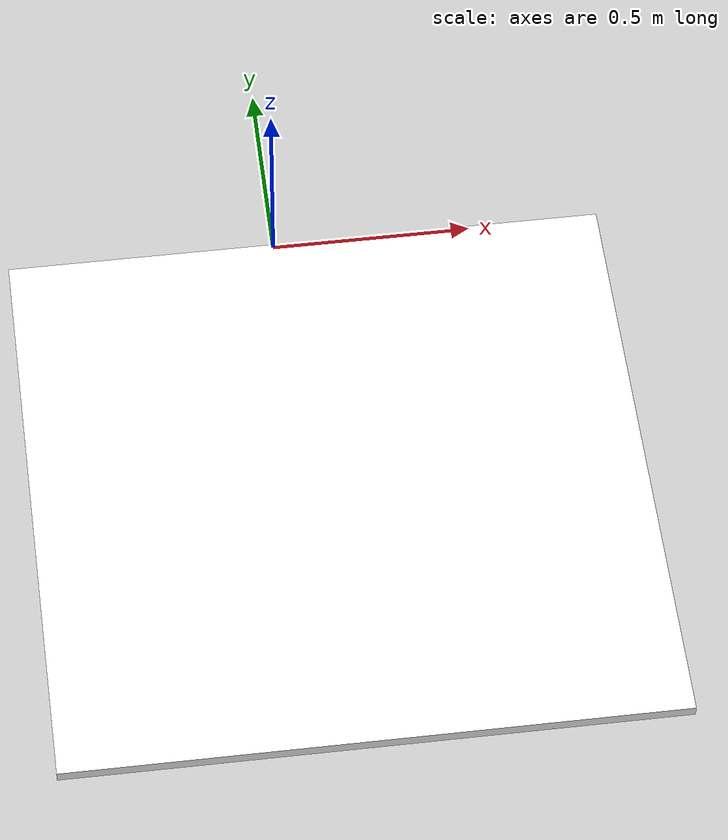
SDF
<sdf version="1.6">
 <world name="default">
  <light name="sun" type="directional">
   <pose>0 0 10 0 -0 0</pose>
   <diffuse>0.8 0.8 0.8 1</diffuse>
   <specular>0.2 0.2 0.2 1</specular>
   <attenuation>
    <range>1000</range>
    <constant>0.9</constant>
    <linear>0.01</linear>
    <quadratic>0.001</quadratic>
   </attenuation>
   <direction>-0.5 0.1 -0.9</direction>
  </light>
  <model name="ground_plane">
   <static>1</static>
   <link name="link">
    <collision name="collision">
     <geometry><plane><normal>0 0 1</normal><size>100 100</size></plane></geometry>
     <surface><friction><ode><mu>100</mu><mu2>50</mu2></ode></friction></surface>
    </collision>
    <visual name="visual">
     <cast_shadows>0</cast_shadows>
     <geometry><plane><normal>0 0 1</normal><size>100 100</size></plane></geometry>
     <material>
      <script><uri>file://media/materials/scripts/gazebo.material</uri><name>Gazebo/Grey</name></script>
     </material>
    </visual>
   </link>
  </model>
  <gravity>0 0 -9.8</gravity>
  <magnetic_field>6e-06 2.3e-05 -4.2e-05</magnetic_field>
  <atmosphere type="adiabatic"/>
  <physics name="default_physics" default="0" type="ode">
   <max_step_size>0.001</max_step_size>
   <real_time_factor>1</real_time_factor>
   <real_time_update_rate>1000</real_time_update_rate>
  </physics>
  <scene><ambient>0.4 0.4 0.4 1</ambient><background>0.7 0.7 0.7 1</background><shadows>1</shadows></scene>
  <spherical_coordinates>
   <surface_model>EARTH_WGS84</surface_model>
   <latitude_deg>0</latitude_deg>
   <longitude_deg>0</longitude_deg>
   <elevation>0</elevation>
   <heading_deg>0</heading_deg>
  </spherical_coordinates>
  <model name="aruco_visual_marker_0">
   <link name="marker">
    <inertial>
     <mass>1</mass>
     <inertia><ixx>1</ixx><ixy>0</ixy><ixz>0</ixz><iyy>1</iyy><iyz>0</iyz><izz>1</izz></inertia>
    </inertial>
    <visual name="visual">
     <geometry><box><size>1.5 1.5 0.05</size></box></geometry>
     <material>
      <script>
       <uri>model://aruco_visual_marker_0/materials/scripts</uri>
       <uri>model://aruco_visual_marker_0/materials/textures</uri>
       <name>ArucoVisualMarker0/Marker</name>
      </script>
      <ambient>1 1 1 1</ambient>
      <diffuse>1 1 1 1</diffuse>
      <specular>0 0 0 1</specular>
      <emissive>1 1 1 0</emissive>
      <shader type="vertex"><normal_map>__default__</normal_map></shader>
     </material>
    </visual>
    <collision name="collision">
     <geometry><box><size>1.5 1.5 1e-05</size></box></geometry>
     <surface>
      <friction>
       <ode><mu>1</mu><mu2>1</mu2><fdir1>0 0 0</fdir1><slip1>0</slip1><slip2>0</slip2></ode>
       <torsional>
        <coefficient>1</coefficient>
        <patch_radius>0</patch_radius>
        <surface_radius>0</surface_radius>
        <use_patch_radius>1</use_patch_radius>
        <ode><slip>0</slip></ode>
       </torsional>
      </friction>
      <bounce><restitution_coefficient>0</restitution_coefficient><threshold>1e+06</threshold></bounce>
      <contact>
       <collide_without_contact>0</collide_without_contact>
       <collide_without_contact_bitmask>1</collide_without_contact_bitmask>
       <collide_bitmask>1</collide_bitmask>
       <ode>
        <soft_cfm>0</soft_cfm>
        <soft_erp>0.2</soft_erp>
        <kp>1e+13</kp>
        <kd>1</kd>
        <max_vel>0.01</max_vel>
        <min_depth>0</min_depth>
       </ode>
       <bullet>
        <split_impulse>1</split_impulse>
        <split_impulse_penetration_threshold>-0.01</split_impulse_penetration_threshold>
        <soft_cfm>0</soft_cfm>
        <soft_erp>0.2</soft_erp>
        <kp>1e+13</kp>
        <kd>1</kd>
       </bullet>
      </contact>
     </surface>
    </collision>
   </link>
   <link name="marker_pad">
    <pose frame="marker">0 0 -1e-05 0 -0 0</pose>
    <visual name="visual">
     <geometry><box><size>1.5 1.5 1e-05</size></box></geometry>
     <material>
      <lighting>1</lighting>
      <script><uri>file://media/materials/scripts/gazebo.material</uri><name>Gazebo/White</name></script>
      <ambient>0.3 0.3 0.3 1</ambient>
      <diffuse>0.7 0.7 0.7 1</diffuse>
      <specular>0.01 0.01 0.01 1</specular>
      <emissive>1 1 1 0</emissive>
      <shader type="vertex"><normal_map>__default__</normal_map></shader>
     </material>
    </visual>
    <collision name="collision">
     <geometry><box><size>0.1778 0.1778 1e-05</size></box></geometry>
     <surface>
      <friction>
       <ode><mu>1</mu><mu2>1</mu2><fdir1>0 0 0</fdir1><slip1>0</slip1><slip2>0</slip2></ode>
       <torsional>
        <coefficient>1</coefficient>
        <patch_radius>0</patch_radius>
        <surface_radius>0</surface_radius>
        <use_patch_radius>1</use_patch_radius>
        <ode><slip>0</slip></ode>
       </torsional>
      </friction>
      <bounce><restitution_coefficient>0</restitution_coefficient><threshold>1e+06</threshold></bounce>
      <contact>
       <collide_without_contact>0</collide_without_contact>
       <collide_without_contact_bitmask>1</collide_without_contact_bitmask>
       <collide_bitmask>1</collide_bitmask>
       <ode>
        <soft_cfm>0</soft_cfm>
        <soft_erp>0.2</soft_erp>
        <kp>1e+13</kp>
        <kd>1</kd>
        <max_vel>0.01</max_vel>
        <min_depth>0</min_depth>
       </ode>
       <bullet>
        <split_impulse>1</split_impulse>
        <split_impulse_penetration_threshold>-0.01</split_impulse_penetration_threshold>
        <soft_cfm>0</soft_cfm>
        <soft_erp>0.2</soft_erp>
        <kp>1e+13</kp>
        <kd>1</kd>
       </bullet>
      </contact>
     </surface>
    </collision>
   </link>
   <joint name="marker_JOINT_marker_pad" type="revolute">
    <parent>marker</parent>
    <child>marker_pad</child>
    <axis>
     <xyz>0 0 1</xyz>
     <use_parent_model_frame>0</use_parent_model_frame>
     <limit><lower>0</lower><upper>0</upper><effort>-1</effort><velocity>-1</velocity></limit>
     <dynamics>
      <spring_reference>0</spring_reference>
      <spring_stiffness>0</spring_stiffness>
      <damping>0</damping>
      <friction>0</friction>
     </dynamics>
    </axis>
    <physics>
     <ode><limit><cfm>0</cfm><erp>0.2</erp></limit><suspension><cfm>0</cfm><erp>0.2</erp></suspension></ode>
    </physics>
   </joint>
   <static>1</static>
   <pose>0.075016 -0.761007 0 0 -0 0</pose>
  </model>
 </world>
</sdf>
